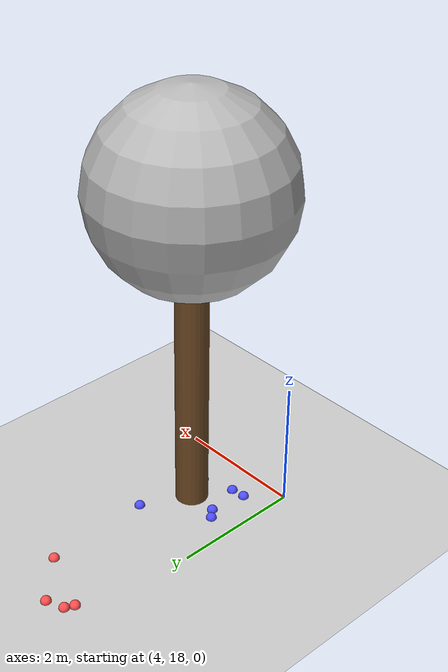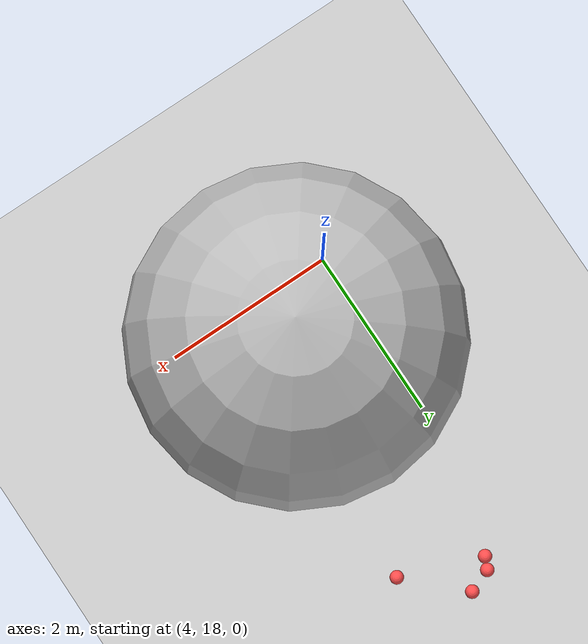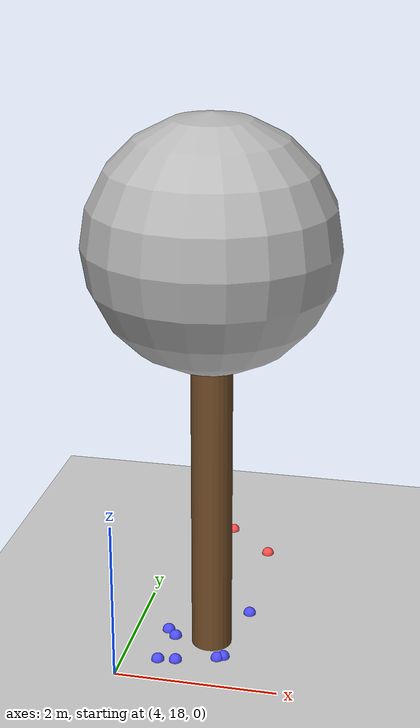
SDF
<sdf version="1.7">
 <world name="default">
  <model name="ground_plane">
   <static>1</static>
   <link name="link">
    <collision name="collision">
     <geometry><plane><normal>0 0 1</normal><size>100 100</size></plane></geometry>
     <surface>
      <contact><collide_bitmask>65535</collide_bitmask></contact>
      <friction><ode><mu>100</mu><mu2>50</mu2></ode></friction>
     </surface>
    </collision>
    <visual name="visual">
     <cast_shadows>0</cast_shadows>
     <geometry><plane><normal>0 0 1</normal><size>100 100</size></plane></geometry>
     <material>
      <script><uri>file://media/materials/scripts/gazebo.material</uri><name>Gazebo/Grey</name></script>
     </material>
    </visual>
   </link>
  </model>
  <model name="tree_simple_51">
   <static>1</static>
   <link name="link">
    <pose>0 0 0.1 0 -0 0</pose>
    <inertial>
     <mass>666</mass>
     <inertia>
      <ixx>0.0861167</ixx>
      <ixy>0</ixy>
      <ixz>0</ixz>
      <iyy>0.0861167</iyy>
      <iyz>0</iyz>
      <izz>0.0861167</izz>
     </inertia>
    </inertial>
    <collision name="collision_trunk">
     <pose>0 0 2 0 -0 0</pose>
     <geometry><cylinder><radius>0.25</radius><length>4</length></cylinder></geometry>
     <surface>
      <contact>
       <poissons_ratio>0.347</poissons_ratio>
       <elastic_modulus>8.8e+09</elastic_modulus>
       <ode><kp>100000</kp><kd>100</kd><max_vel>100</max_vel><min_depth>0.001</min_depth></ode>
      </contact>
      <friction>
       <torsional>
        <coefficient>1</coefficient>
        <use_patch_radius>0</use_patch_radius>
        <surface_radius>0.01</surface_radius>
       </torsional>
      </friction>
     </surface>
    </collision>
    <collision name="collision_treetop">
     <pose>0 0 5.2 0 -0 0</pose>
     <geometry><sphere><radius>1.5</radius></sphere></geometry>
     <surface>
      <contact>
       <poissons_ratio>0.347</poissons_ratio>
       <elastic_modulus>8.8e+09</elastic_modulus>
       <ode><kp>100000</kp><kd>100</kd><max_vel>100</max_vel><min_depth>0.001</min_depth></ode>
      </contact>
      <friction>
       <torsional>
        <coefficient>1</coefficient>
        <use_patch_radius>0</use_patch_radius>
        <surface_radius>0.01</surface_radius>
       </torsional>
      </friction>
     </surface>
    </collision>
    <visual name="trunk">
     <pose>0 0 2 0 -0 0</pose>
     <geometry><cylinder><radius>0.25</radius><length>4</length></cylinder></geometry>
     <material>
      <script>
       <uri>model://tree_simple/scripts</uri>
       <uri>model://tree_simple/materials/textures</uri>
       <name>TreeSimple/Trunk</name>
      </script>
     </material>
    </visual>
    <visual name="treetop">
     <pose>0 0 5.2 0 -0 0</pose>
     <geometry><sphere><radius>1.5</radius></sphere></geometry>
     <material>
      <script>
       <uri>model://tree_simple/scripts</uri>
       <uri>model://tree_simple/materials/textures</uri>
       <name>TreeSimple/Treetop</name>
      </script>
     </material>
    </visual>
   </link>
   <pose>5 19 -0.1 0 -0 0</pose>
  </model>
  <model name="seed_red_185">
   <link name="link">
    <inertial>
     <mass>1</mass>
     <inertia><ixx>0.1</ixx><ixy>0</ixy><ixz>0</ixz><iyy>0.1</iyy><iyz>0</iyz><izz>0.1</izz></inertia>
    </inertial>
    <visual name="visual">
     <geometry><sphere><radius>0.08</radius></sphere></geometry>
     <material>
      <script><name>Gazebo/Grey</name><uri>file://media/materials/scripts/gazebo.material</uri></script>
      <shader type="pixel"><normal_map>__default__</normal_map></shader>
      <ambient>1 0.3 0.3 1</ambient>
      <diffuse>0.7 0.7 0.7 1</diffuse>
      <specular>0.01 0.01 0.01 1</specular>
      <emissive>0 0 0 1</emissive>
     </material>
    </visual>
    <collision name="collision">
     <geometry><sphere><radius>0.0005</radius></sphere></geometry>
     <surface>
      <friction>
       <ode><mu>1</mu><mu2>1</mu2><fdir1>0 0 0</fdir1><slip1>0</slip1><slip2>0</slip2></ode>
       <torsional>
        <coefficient>1</coefficient>
        <patch_radius>0</patch_radius>
        <surface_radius>0</surface_radius>
        <use_patch_radius>1</use_patch_radius>
        <ode><slip>0</slip></ode>
       </torsional>
      </friction>
      <bounce><restitution_coefficient>0</restitution_coefficient><threshold>1e+06</threshold></bounce>
      <contact>
       <collide_without_contact>0</collide_without_contact>
       <collide_without_contact_bitmask>1</collide_without_contact_bitmask>
       <collide_bitmask>1</collide_bitmask>
       <ode>
        <soft_cfm>0</soft_cfm>
        <soft_erp>0.2</soft_erp>
        <kp>1e+13</kp>
        <kd>1</kd>
        <max_vel>0.01</max_vel>
        <min_depth>0</min_depth>
       </ode>
       <bullet>
        <split_impulse>1</split_impulse>
        <split_impulse_penetration_threshold>-0.01</split_impulse_penetration_threshold>
        <soft_cfm>0</soft_cfm>
        <soft_erp>0.2</soft_erp>
        <kp>1e+13</kp>
        <kd>1</kd>
       </bullet>
      </contact>
     </surface>
    </collision>
   </link>
   <static>0</static>
   <pose>4.40724 21.9107 0.0005 0 -0 0</pose>
  </model>
  <model name="seed_red_187">
   <link name="link">
    <inertial>
     <mass>1</mass>
     <inertia><ixx>0.1</ixx><ixy>0</ixy><ixz>0</ixz><iyy>0.1</iyy><iyz>0</iyz><izz>0.1</izz></inertia>
    </inertial>
    <visual name="visual">
     <geometry><sphere><radius>0.08</radius></sphere></geometry>
     <material>
      <script><name>Gazebo/Grey</name><uri>file://media/materials/scripts/gazebo.material</uri></script>
      <shader type="pixel"><normal_map>__default__</normal_map></shader>
      <ambient>1 0.3 0.3 1</ambient>
      <diffuse>0.7 0.7 0.7 1</diffuse>
      <specular>0.01 0.01 0.01 1</specular>
      <emissive>0 0 0 1</emissive>
     </material>
    </visual>
    <collision name="collision">
     <geometry><sphere><radius>0.0005</radius></sphere></geometry>
     <surface>
      <friction>
       <ode><mu>1</mu><mu2>1</mu2><fdir1>0 0 0</fdir1><slip1>0</slip1><slip2>0</slip2></ode>
       <torsional>
        <coefficient>1</coefficient>
        <patch_radius>0</patch_radius>
        <surface_radius>0</surface_radius>
        <use_patch_radius>1</use_patch_radius>
        <ode><slip>0</slip></ode>
       </torsional>
      </friction>
      <bounce><restitution_coefficient>0</restitution_coefficient><threshold>1e+06</threshold></bounce>
      <contact>
       <collide_without_contact>0</collide_without_contact>
       <collide_without_contact_bitmask>1</collide_without_contact_bitmask>
       <collide_bitmask>1</collide_bitmask>
       <ode>
        <soft_cfm>0</soft_cfm>
        <soft_erp>0.2</soft_erp>
        <kp>1e+13</kp>
        <kd>1</kd>
        <max_vel>0.01</max_vel>
        <min_depth>0</min_depth>
       </ode>
       <bullet>
        <split_impulse>1</split_impulse>
        <split_impulse_penetration_threshold>-0.01</split_impulse_penetration_threshold>
        <soft_cfm>0</soft_cfm>
        <soft_erp>0.2</soft_erp>
        <kp>1e+13</kp>
        <kd>1</kd>
       </bullet>
      </contact>
     </surface>
    </collision>
   </link>
   <static>0</static>
   <pose>5.29194 21.4198 0.0005 0 -0 0</pose>
  </model>
  <model name="seed_red_189">
   <link name="link">
    <inertial>
     <mass>1</mass>
     <inertia><ixx>0.1</ixx><ixy>0</ixy><ixz>0</ixz><iyy>0.1</iyy><iyz>0</iyz><izz>0.1</izz></inertia>
    </inertial>
    <visual name="visual">
     <geometry><sphere><radius>0.08</radius></sphere></geometry>
     <material>
      <script><name>Gazebo/Grey</name><uri>file://media/materials/scripts/gazebo.material</uri></script>
      <shader type="pixel"><normal_map>__default__</normal_map></shader>
      <ambient>1 0.3 0.3 1</ambient>
      <diffuse>0.7 0.7 0.7 1</diffuse>
      <specular>0.01 0.01 0.01 1</specular>
      <emissive>0 0 0 1</emissive>
     </material>
    </visual>
    <collision name="collision">
     <geometry><sphere><radius>0.0005</radius></sphere></geometry>
     <surface>
      <friction>
       <ode><mu>1</mu><mu2>1</mu2><fdir1>0 0 0</fdir1><slip1>0</slip1><slip2>0</slip2></ode>
       <torsional>
        <coefficient>1</coefficient>
        <patch_radius>0</patch_radius>
        <surface_radius>0</surface_radius>
        <use_patch_radius>1</use_patch_radius>
        <ode><slip>0</slip></ode>
       </torsional>
      </friction>
      <bounce><restitution_coefficient>0</restitution_coefficient><threshold>1e+06</threshold></bounce>
      <contact>
       <collide_without_contact>0</collide_without_contact>
       <collide_without_contact_bitmask>1</collide_without_contact_bitmask>
       <collide_bitmask>1</collide_bitmask>
       <ode>
        <soft_cfm>0</soft_cfm>
        <soft_erp>0.2</soft_erp>
        <kp>1e+13</kp>
        <kd>1</kd>
        <max_vel>0.01</max_vel>
        <min_depth>0</min_depth>
       </ode>
       <bullet>
        <split_impulse>1</split_impulse>
        <split_impulse_penetration_threshold>-0.01</split_impulse_penetration_threshold>
        <soft_cfm>0</soft_cfm>
        <soft_erp>0.2</soft_erp>
        <kp>1e+13</kp>
        <kd>1</kd>
       </bullet>
      </contact>
     </surface>
    </collision>
   </link>
   <static>0</static>
   <pose>4.34216 21.7714 0.0005 0 -0 0</pose>
  </model>
  <model name="seed_red_191">
   <link name="link">
    <inertial>
     <mass>1</mass>
     <inertia><ixx>0.1</ixx><ixy>0</ixy><ixz>0</ixz><iyy>0.1</iyy><iyz>0</iyz><izz>0.1</izz></inertia>
    </inertial>
    <visual name="visual">
     <geometry><sphere><radius>0.08</radius></sphere></geometry>
     <material>
      <script><name>Gazebo/Grey</name><uri>file://media/materials/scripts/gazebo.material</uri></script>
      <shader type="pixel"><normal_map>__default__</normal_map></shader>
      <ambient>1 0.3 0.3 1</ambient>
      <diffuse>0.7 0.7 0.7 1</diffuse>
      <specular>0.01 0.01 0.01 1</specular>
      <emissive>0 0 0 1</emissive>
     </material>
    </visual>
    <collision name="collision">
     <geometry><sphere><radius>0.0005</radius></sphere></geometry>
     <surface>
      <friction>
       <ode><mu>1</mu><mu2>1</mu2><fdir1>0 0 0</fdir1><slip1>0</slip1><slip2>0</slip2></ode>
       <torsional>
        <coefficient>1</coefficient>
        <patch_radius>0</patch_radius>
        <surface_radius>0</surface_radius>
        <use_patch_radius>1</use_patch_radius>
        <ode><slip>0</slip></ode>
       </torsional>
      </friction>
      <bounce><restitution_coefficient>0</restitution_coefficient><threshold>1e+06</threshold></bounce>
      <contact>
       <collide_without_contact>0</collide_without_contact>
       <collide_without_contact_bitmask>1</collide_without_contact_bitmask>
       <collide_bitmask>1</collide_bitmask>
       <ode>
        <soft_cfm>0</soft_cfm>
        <soft_erp>0.2</soft_erp>
        <kp>1e+13</kp>
        <kd>1</kd>
        <max_vel>0.01</max_vel>
        <min_depth>0</min_depth>
       </ode>
       <bullet>
        <split_impulse>1</split_impulse>
        <split_impulse_penetration_threshold>-0.01</split_impulse_penetration_threshold>
        <soft_cfm>0</soft_cfm>
        <soft_erp>0.2</soft_erp>
        <kp>1e+13</kp>
        <kd>1</kd>
       </bullet>
      </contact>
     </surface>
    </collision>
   </link>
   <static>0</static>
   <pose>4.68135 22.0182 0.0005 0 -0 0</pose>
  </model>
  <model name="seed_blue_97">
   <link name="link">
    <inertial>
     <mass>1</mass>
     <inertia><ixx>0.1</ixx><ixy>0</ixy><ixz>0</ixz><iyy>0.1</iyy><iyz>0</iyz><izz>0.1</izz></inertia>
    </inertial>
    <visual name="visual">
     <geometry><sphere><radius>0.08</radius></sphere></geometry>
     <material>
      <script><name>Gazebo/Grey</name><uri>file://media/materials/scripts/gazebo.material</uri></script>
      <shader type="pixel"><normal_map>__default__</normal_map></shader>
      <ambient>0.3 0.3 1 1</ambient>
      <diffuse>0.7 0.7 0.7 1</diffuse>
      <specular>0.01 0.01 0.01 1</specular>
      <emissive>0 0 0 1</emissive>
     </material>
    </visual>
    <collision name="collision">
     <geometry><sphere><radius>0.0005</radius></sphere></geometry>
     <surface>
      <friction>
       <ode><mu>1</mu><mu2>1</mu2><fdir1>0 0 0</fdir1><slip1>0</slip1><slip2>0</slip2></ode>
       <torsional>
        <coefficient>1</coefficient>
        <patch_radius>0</patch_radius>
        <surface_radius>0</surface_radius>
        <use_patch_radius>1</use_patch_radius>
        <ode><slip>0</slip></ode>
       </torsional>
      </friction>
      <bounce><restitution_coefficient>0</restitution_coefficient><threshold>1e+06</threshold></bounce>
      <contact>
       <collide_without_contact>0</collide_without_contact>
       <collide_without_contact_bitmask>1</collide_without_contact_bitmask>
       <collide_bitmask>1</collide_bitmask>
       <ode>
        <soft_cfm>0</soft_cfm>
        <soft_erp>0.2</soft_erp>
        <kp>1e+13</kp>
        <kd>1</kd>
        <max_vel>0.01</max_vel>
        <min_depth>0</min_depth>
       </ode>
       <bullet>
        <split_impulse>1</split_impulse>
        <split_impulse_penetration_threshold>-0.01</split_impulse_penetration_threshold>
        <soft_cfm>0</soft_cfm>
        <soft_erp>0.2</soft_erp>
        <kp>1e+13</kp>
        <kd>1</kd>
       </bullet>
      </contact>
     </surface>
    </collision>
   </link>
   <static>0</static>
   <pose>5.34486 19.7563 0.0005 0 -0 0</pose>
  </model>
  <model name="seed_blue_98">
   <link name="link">
    <inertial>
     <mass>1</mass>
     <inertia><ixx>0.1</ixx><ixy>0</ixy><ixz>0</ixz><iyy>0.1</iyy><iyz>0</iyz><izz>0.1</izz></inertia>
    </inertial>
    <visual name="visual">
     <geometry><sphere><radius>0.08</radius></sphere></geometry>
     <material>
      <script><name>Gazebo/Grey</name><uri>file://media/materials/scripts/gazebo.material</uri></script>
      <shader type="pixel"><normal_map>__default__</normal_map></shader>
      <ambient>0.3 0.3 1 1</ambient>
      <diffuse>0.7 0.7 0.7 1</diffuse>
      <specular>0.01 0.01 0.01 1</specular>
      <emissive>0 0 0 1</emissive>
     </material>
    </visual>
    <collision name="collision">
     <geometry><sphere><radius>0.0005</radius></sphere></geometry>
     <surface>
      <friction>
       <ode><mu>1</mu><mu2>1</mu2><fdir1>0 0 0</fdir1><slip1>0</slip1><slip2>0</slip2></ode>
       <torsional>
        <coefficient>1</coefficient>
        <patch_radius>0</patch_radius>
        <surface_radius>0</surface_radius>
        <use_patch_radius>1</use_patch_radius>
        <ode><slip>0</slip></ode>
       </torsional>
      </friction>
      <bounce><restitution_coefficient>0</restitution_coefficient><threshold>1e+06</threshold></bounce>
      <contact>
       <collide_without_contact>0</collide_without_contact>
       <collide_without_contact_bitmask>1</collide_without_contact_bitmask>
       <collide_bitmask>1</collide_bitmask>
       <ode>
        <soft_cfm>0</soft_cfm>
        <soft_erp>0.2</soft_erp>
        <kp>1e+13</kp>
        <kd>1</kd>
        <max_vel>0.01</max_vel>
        <min_depth>0</min_depth>
       </ode>
       <bullet>
        <split_impulse>1</split_impulse>
        <split_impulse_penetration_threshold>-0.01</split_impulse_penetration_threshold>
        <soft_cfm>0</soft_cfm>
        <soft_erp>0.2</soft_erp>
        <kp>1e+13</kp>
        <kd>1</kd>
       </bullet>
      </contact>
     </surface>
    </collision>
   </link>
   <static>0</static>
   <pose>4.40791 19.1392 0.0005 0 -0 0</pose>
  </model>
  <model name="seed_blue_99">
   <link name="link">
    <inertial>
     <mass>1</mass>
     <inertia><ixx>0.1</ixx><ixy>0</ixy><ixz>0</ixz><iyy>0.1</iyy><iyz>0</iyz><izz>0.1</izz></inertia>
    </inertial>
    <visual name="visual">
     <geometry><sphere><radius>0.08</radius></sphere></geometry>
     <material>
      <script><name>Gazebo/Grey</name><uri>file://media/materials/scripts/gazebo.material</uri></script>
      <shader type="pixel"><normal_map>__default__</normal_map></shader>
      <ambient>0.3 0.3 1 1</ambient>
      <diffuse>0.7 0.7 0.7 1</diffuse>
      <specular>0.01 0.01 0.01 1</specular>
      <emissive>0 0 0 1</emissive>
     </material>
    </visual>
    <collision name="collision">
     <geometry><sphere><radius>0.0005</radius></sphere></geometry>
     <surface>
      <friction>
       <ode><mu>1</mu><mu2>1</mu2><fdir1>0 0 0</fdir1><slip1>0</slip1><slip2>0</slip2></ode>
       <torsional>
        <coefficient>1</coefficient>
        <patch_radius>0</patch_radius>
        <surface_radius>0</surface_radius>
        <use_patch_radius>1</use_patch_radius>
        <ode><slip>0</slip></ode>
       </torsional>
      </friction>
      <bounce><restitution_coefficient>0</restitution_coefficient><threshold>1e+06</threshold></bounce>
      <contact>
       <collide_without_contact>0</collide_without_contact>
       <collide_without_contact_bitmask>1</collide_without_contact_bitmask>
       <collide_bitmask>1</collide_bitmask>
       <ode>
        <soft_cfm>0</soft_cfm>
        <soft_erp>0.2</soft_erp>
        <kp>1e+13</kp>
        <kd>1</kd>
        <max_vel>0.01</max_vel>
        <min_depth>0</min_depth>
       </ode>
       <bullet>
        <split_impulse>1</split_impulse>
        <split_impulse_penetration_threshold>-0.01</split_impulse_penetration_threshold>
        <soft_cfm>0</soft_cfm>
        <soft_erp>0.2</soft_erp>
        <kp>1e+13</kp>
        <kd>1</kd>
       </bullet>
      </contact>
     </surface>
    </collision>
   </link>
   <static>0</static>
   <pose>5.1493 18.6147 0.0005 0 -0 0</pose>
  </model>
  <model name="seed_blue_100">
   <link name="link">
    <inertial>
     <mass>1</mass>
     <inertia><ixx>0.1</ixx><ixy>0</ixy><ixz>0</ixz><iyy>0.1</iyy><iyz>0</iyz><izz>0.1</izz></inertia>
    </inertial>
    <visual name="visual">
     <geometry><sphere><radius>0.08</radius></sphere></geometry>
     <material>
      <script><name>Gazebo/Grey</name><uri>file://media/materials/scripts/gazebo.material</uri></script>
      <shader type="pixel"><normal_map>__default__</normal_map></shader>
      <ambient>0.3 0.3 1 1</ambient>
      <diffuse>0.7 0.7 0.7 1</diffuse>
      <specular>0.01 0.01 0.01 1</specular>
      <emissive>0 0 0 1</emissive>
     </material>
    </visual>
    <collision name="collision">
     <geometry><sphere><radius>0.0005</radius></sphere></geometry>
     <surface>
      <friction>
       <ode><mu>1</mu><mu2>1</mu2><fdir1>0 0 0</fdir1><slip1>0</slip1><slip2>0</slip2></ode>
       <torsional>
        <coefficient>1</coefficient>
        <patch_radius>0</patch_radius>
        <surface_radius>0</surface_radius>
        <use_patch_radius>1</use_patch_radius>
        <ode><slip>0</slip></ode>
       </torsional>
      </friction>
      <bounce><restitution_coefficient>0</restitution_coefficient><threshold>1e+06</threshold></bounce>
      <contact>
       <collide_without_contact>0</collide_without_contact>
       <collide_without_contact_bitmask>1</collide_without_contact_bitmask>
       <collide_bitmask>1</collide_bitmask>
       <ode>
        <soft_cfm>0</soft_cfm>
        <soft_erp>0.2</soft_erp>
        <kp>1e+13</kp>
        <kd>1</kd>
        <max_vel>0.01</max_vel>
        <min_depth>0</min_depth>
       </ode>
       <bullet>
        <split_impulse>1</split_impulse>
        <split_impulse_penetration_threshold>-0.01</split_impulse_penetration_threshold>
        <soft_cfm>0</soft_cfm>
        <soft_erp>0.2</soft_erp>
        <kp>1e+13</kp>
        <kd>1</kd>
       </bullet>
      </contact>
     </surface>
    </collision>
   </link>
   <static>0</static>
   <pose>4.43633 18.4373 0.0005 0 -0 0</pose>
  </model>
  <model name="seed_blue_101">
   <link name="link">
    <inertial>
     <mass>1</mass>
     <inertia><ixx>0.1</ixx><ixy>0</ixy><ixz>0</ixz><iyy>0.1</iyy><iyz>0</iyz><izz>0.1</izz></inertia>
    </inertial>
    <visual name="visual">
     <geometry><sphere><radius>0.08</radius></sphere></geometry>
     <material>
      <script><name>Gazebo/Grey</name><uri>file://media/materials/scripts/gazebo.material</uri></script>
      <shader type="pixel"><normal_map>__default__</normal_map></shader>
      <ambient>0.3 0.3 1 1</ambient>
      <diffuse>0.7 0.7 0.7 1</diffuse>
      <specular>0.01 0.01 0.01 1</specular>
      <emissive>0 0 0 1</emissive>
     </material>
    </visual>
    <collision name="collision">
     <geometry><sphere><radius>0.0005</radius></sphere></geometry>
     <surface>
      <friction>
       <ode><mu>1</mu><mu2>1</mu2><fdir1>0 0 0</fdir1><slip1>0</slip1><slip2>0</slip2></ode>
       <torsional>
        <coefficient>1</coefficient>
        <patch_radius>0</patch_radius>
        <surface_radius>0</surface_radius>
        <use_patch_radius>1</use_patch_radius>
        <ode><slip>0</slip></ode>
       </torsional>
      </friction>
      <bounce><restitution_coefficient>0</restitution_coefficient><threshold>1e+06</threshold></bounce>
      <contact>
       <collide_without_contact>0</collide_without_contact>
       <collide_without_contact_bitmask>1</collide_without_contact_bitmask>
       <collide_bitmask>1</collide_bitmask>
       <ode>
        <soft_cfm>0</soft_cfm>
        <soft_erp>0.2</soft_erp>
        <kp>1e+13</kp>
        <kd>1</kd>
        <max_vel>0.01</max_vel>
        <min_depth>0</min_depth>
       </ode>
       <bullet>
        <split_impulse>1</split_impulse>
        <split_impulse_penetration_threshold>-0.01</split_impulse_penetration_threshold>
        <soft_cfm>0</soft_cfm>
        <soft_erp>0.2</soft_erp>
        <kp>1e+13</kp>
        <kd>1</kd>
       </bullet>
      </contact>
     </surface>
    </collision>
   </link>
   <static>0</static>
   <pose>4.65465 18.4642 0.0005 0 -0 0</pose>
  </model>
  <model name="seed_blue_102">
   <link name="link">
    <inertial>
     <mass>1</mass>
     <inertia><ixx>0.1</ixx><ixy>0</ixy><ixz>0</ixz><iyy>0.1</iyy><iyz>0</iyz><izz>0.1</izz></inertia>
    </inertial>
    <visual name="visual">
     <geometry><sphere><radius>0.08</radius></sphere></geometry>
     <material>
      <script><name>Gazebo/Grey</name><uri>file://media/materials/scripts/gazebo.material</uri></script>
      <shader type="pixel"><normal_map>__default__</normal_map></shader>
      <ambient>0.3 0.3 1 1</ambient>
      <diffuse>0.7 0.7 0.7 1</diffuse>
      <specular>0.01 0.01 0.01 1</specular>
      <emissive>0 0 0 1</emissive>
     </material>
    </visual>
    <collision name="collision">
     <geometry><sphere><radius>0.0005</radius></sphere></geometry>
     <surface>
      <friction>
       <ode><mu>1</mu><mu2>1</mu2><fdir1>0 0 0</fdir1><slip1>0</slip1><slip2>0</slip2></ode>
       <torsional>
        <coefficient>1</coefficient>
        <patch_radius>0</patch_radius>
        <surface_radius>0</surface_radius>
        <use_patch_radius>1</use_patch_radius>
        <ode><slip>0</slip></ode>
       </torsional>
      </friction>
      <bounce><restitution_coefficient>0</restitution_coefficient><threshold>1e+06</threshold></bounce>
      <contact>
       <collide_without_contact>0</collide_without_contact>
       <collide_without_contact_bitmask>1</collide_without_contact_bitmask>
       <collide_bitmask>1</collide_bitmask>
       <ode>
        <soft_cfm>0</soft_cfm>
        <soft_erp>0.2</soft_erp>
        <kp>1e+13</kp>
        <kd>1</kd>
        <max_vel>0.01</max_vel>
        <min_depth>0</min_depth>
       </ode>
       <bullet>
        <split_impulse>1</split_impulse>
        <split_impulse_penetration_threshold>-0.01</split_impulse_penetration_threshold>
        <soft_cfm>0</soft_cfm>
        <soft_erp>0.2</soft_erp>
        <kp>1e+13</kp>
        <kd>1</kd>
       </bullet>
      </contact>
     </surface>
    </collision>
   </link>
   <static>0</static>
   <pose>4.52734 19.0085 0.0005 0 -0 0</pose>
  </model>
  <model name="seed_blue_103">
   <link name="link">
    <inertial>
     <mass>1</mass>
     <inertia><ixx>0.1</ixx><ixy>0</ixy><ixz>0</ixz><iyy>0.1</iyy><iyz>0</iyz><izz>0.1</izz></inertia>
    </inertial>
    <visual name="visual">
     <geometry><sphere><radius>0.08</radius></sphere></geometry>
     <material>
      <script><name>Gazebo/Grey</name><uri>file://media/materials/scripts/gazebo.material</uri></script>
      <shader type="pixel"><normal_map>__default__</normal_map></shader>
      <ambient>0.3 0.3 1 1</ambient>
      <diffuse>0.7 0.7 0.7 1</diffuse>
      <specular>0.01 0.01 0.01 1</specular>
      <emissive>0 0 0 1</emissive>
     </material>
    </visual>
    <collision name="collision">
     <geometry><sphere><radius>0.0005</radius></sphere></geometry>
     <surface>
      <friction>
       <ode><mu>1</mu><mu2>1</mu2><fdir1>0 0 0</fdir1><slip1>0</slip1><slip2>0</slip2></ode>
       <torsional>
        <coefficient>1</coefficient>
        <patch_radius>0</patch_radius>
        <surface_radius>0</surface_radius>
        <use_patch_radius>1</use_patch_radius>
        <ode><slip>0</slip></ode>
       </torsional>
      </friction>
      <bounce><restitution_coefficient>0</restitution_coefficient><threshold>1e+06</threshold></bounce>
      <contact>
       <collide_without_contact>0</collide_without_contact>
       <collide_without_contact_bitmask>1</collide_without_contact_bitmask>
       <collide_bitmask>1</collide_bitmask>
       <ode>
        <soft_cfm>0</soft_cfm>
        <soft_erp>0.2</soft_erp>
        <kp>1e+13</kp>
        <kd>1</kd>
        <max_vel>0.01</max_vel>
        <min_depth>0</min_depth>
       </ode>
       <bullet>
        <split_impulse>1</split_impulse>
        <split_impulse_penetration_threshold>-0.01</split_impulse_penetration_threshold>
        <soft_cfm>0</soft_cfm>
        <soft_erp>0.2</soft_erp>
        <kp>1e+13</kp>
        <kd>1</kd>
       </bullet>
      </contact>
     </surface>
    </collision>
   </link>
   <static>0</static>
   <pose>5.21707 18.6594 0.0005 0 -0 0</pose>
  </model>
 </world>
</sdf>
